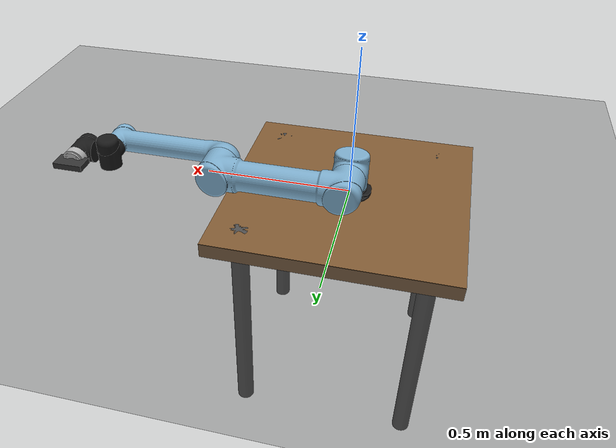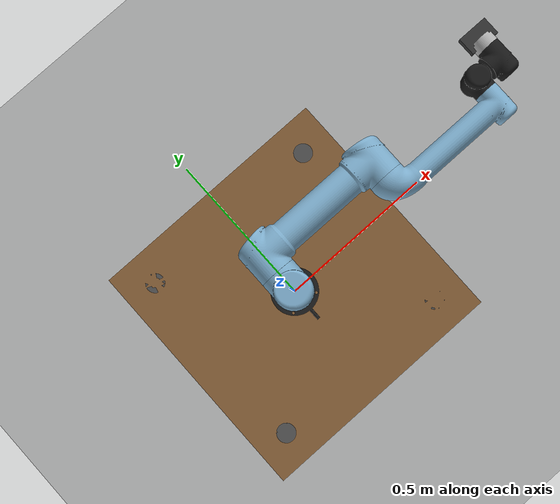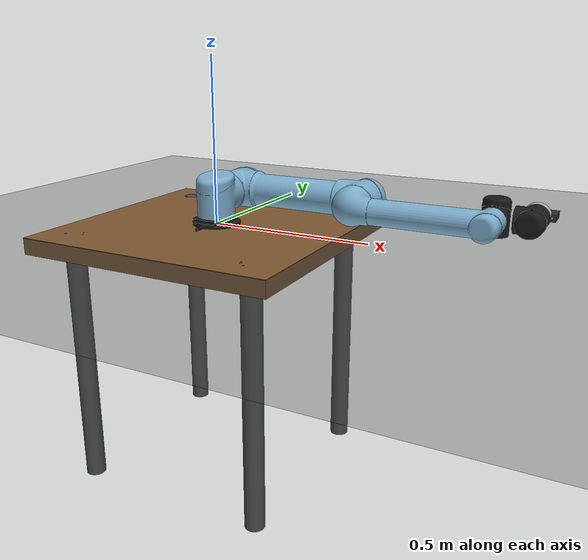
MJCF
<mujoco model="UR5">
  <compiler angle="radian" meshdir="meshes/visual" autolimits="true"/>

  <option timestep="0.002" integrator="RK4">
    <flag contact="enable"/>
  </option>

  <visual>
    <headlight ambient="0.6 0.6 0.6" diffuse="0.8 0.8 0.8" specular="0.2 0.2 0.2"/>
    <rgba haze="0.15 0.25 0.35 1"/>
    <global azimuth="150" elevation="-20"/>
    <quality shadowsize="4096"/>
    <map znear="0.001" zfar="50"/>
  </visual>

  <asset>
    <!-- UR5 Meshes -->
    <mesh name="base" file="base.stl"/>
    <mesh name="shoulder" file="shoulder.stl"/>
    <mesh name="upperarm" file="upperarm.stl"/>
    <mesh name="forearm" file="forearm.stl"/>
    <mesh name="wrist1" file="wrist1.stl"/>
    <mesh name="wrist2" file="wrist2.stl"/>
    <mesh name="wrist3" file="wrist3.stl"/>

    <!-- Materials for realistic appearance -->
    <material name="ur_blue" rgba="0.49 0.678 0.8 1"/>
    <material name="ur_black" rgba="0.1 0.1 0.1 1"/>
    <material name="metal" rgba="0.7 0.7 0.7 1" specular="0.5" shininess="0.3"/>

    <!-- Textures -->
    <texture name="grid" type="2d" builtin="checker" width="512" height="512"
             rgb1="0.2 0.2 0.2" rgb2="0.3 0.3 0.3"/>
    <material name="grid" texture="grid" texrepeat="10 10" reflectance="0.1"/>
  </asset>

  <worldbody>
    <!-- Lighting for realistic rendering -->
    <light pos="2 2 3" dir="-1 -1 -1.5" diffuse="0.8 0.8 0.8" specular="0.3 0.3 0.3" directional="true" castshadow="true"/>
    <light pos="-2 -2 3" dir="1 1 -1.5" diffuse="0.5 0.5 0.5" specular="0.2 0.2 0.2" directional="true"/>

    <!-- Ground plane -->
    <geom name="floor" type="plane" size="3 3 0.1" material="grid" condim="3" friction="1 0.005 0.0001"/>

    <!-- Work table -->
    <body name="table" pos="0 0 0">
      <geom type="box" size="0.4 0.4 0.025" pos="0 0 -0.025" rgba="0.5 0.35 0.2 1"/>
      <geom type="cylinder" size="0.03 0.4" pos="0.3 0.3 -0.4" rgba="0.3 0.3 0.3 1"/>
      <geom type="cylinder" size="0.03 0.4" pos="-0.3 0.3 -0.4" rgba="0.3 0.3 0.3 1"/>
      <geom type="cylinder" size="0.03 0.4" pos="0.3 -0.3 -0.4" rgba="0.3 0.3 0.3 1"/>
      <geom type="cylinder" size="0.03 0.4" pos="-0.3 -0.3 -0.4" rgba="0.3 0.3 0.3 1"/>
    </body>

    <!-- UR5 Robot -->
    <body name="base_link" pos="0 0 0">
      <inertial pos="0 0 0" mass="4.0" diaginertia="0.00443333156 0.00443333156 0.0072"/>
      <geom type="mesh" mesh="base" material="ur_black" contype="0" conaffinity="0"/>

      <!-- Shoulder Pan Joint -->
      <body name="shoulder_link" pos="0 0 0.089159">
        <inertial pos="0 0 0" mass="3.7" diaginertia="0.010267495893 0.010267495893 0.00666"/>
        <joint name="shoulder_pan_joint" type="hinge" axis="0 0 1" range="-6.2831853 6.2831853"
               damping="0.5" armature="0.1"/>
        <geom type="mesh" mesh="shoulder" material="ur_blue" contype="0" conaffinity="0"/>

        <!-- Shoulder Lift Joint -->
        <body name="upper_arm_link" pos="0 0.13585 0" quat="0.707107 0 0.707107 0">
          <inertial pos="0 0 0.28" mass="8.393" diaginertia="0.22689067591 0.22689067591 0.0151074"/>
          <joint name="shoulder_lift_joint" type="hinge" axis="0 0 1" range="-6.2831853 6.2831853"
                 damping="0.5" armature="0.1"/>
          <geom type="mesh" mesh="upperarm" material="ur_blue" contype="0" conaffinity="0"/>

          <!-- Elbow Joint -->
          <body name="forearm_link" pos="0 -0.1197 0.425">
            <inertial pos="0 0 0.25" mass="2.275" diaginertia="0.049443313556 0.049443313556 0.004095"/>
            <joint name="elbow_joint" type="hinge" axis="0 0 1" range="-3.14159265 3.14159265"
                   damping="0.5" armature="0.1"/>
            <geom type="mesh" mesh="forearm" material="ur_blue" contype="0" conaffinity="0"/>

            <!-- Wrist 1 Joint -->
            <body name="wrist_1_link" pos="0 0 0.39225" quat="0.707107 0 0.707107 0">
              <inertial pos="0 0 0" mass="1.219" diaginertia="0.0025598989760 0.0025598989760 0.0021942"/>
              <joint name="wrist_1_joint" type="hinge" axis="0 0 1" range="-6.2831853 6.2831853"
                     damping="0.1" armature="0.05"/>
              <geom type="mesh" mesh="wrist1" material="ur_black" contype="0" conaffinity="0"/>

              <!-- Wrist 2 Joint -->
              <body name="wrist_2_link" pos="0 0.09465 0" quat="0.707107 0 -0.707107 0">
                <inertial pos="0 0 0" mass="1.219" diaginertia="0.0025598989760 0.0025598989760 0.0021942"/>
                <joint name="wrist_2_joint" type="hinge" axis="0 0 1" range="-6.2831853 6.2831853"
                       damping="0.1" armature="0.05"/>
                <geom type="mesh" mesh="wrist2" material="ur_black" contype="0" conaffinity="0"/>

                <!-- Wrist 3 Joint -->
                <body name="wrist_3_link" pos="0 0 0.09465">
                  <inertial pos="0 0 0" mass="0.1879" diaginertia="0.000132134 0.000132134 0.000132134"/>
                  <joint name="wrist_3_joint" type="hinge" axis="0 0 1" range="-6.2831853 6.2831853"
                         damping="0.1" armature="0.05"/>
                  <geom type="mesh" mesh="wrist3" material="metal" contype="0" conaffinity="0"/>

                  <!-- End Effector Site -->
                  <site name="ee_site" pos="0 0.0823 0" size="0.01" rgba="1 0 0 1"/>

                  <!-- Gripper visualization (simple) -->
                  <geom type="box" size="0.01 0.03 0.05" pos="0 0.09 0" rgba="0.2 0.2 0.2 1"
                        contype="0" conaffinity="0"/>
                </body>
              </body>
            </body>
          </body>
        </body>
      </body>
    </body>
  </worldbody>

  <actuator>
    <motor name="shoulder_pan" joint="shoulder_pan_joint" ctrllimited="true" ctrlrange="-150 150" gear="101"/>
    <motor name="shoulder_lift" joint="shoulder_lift_joint" ctrllimited="true" ctrlrange="-150 150" gear="101"/>
    <motor name="elbow" joint="elbow_joint" ctrllimited="true" ctrlrange="-150 150" gear="101"/>
    <motor name="wrist_1" joint="wrist_1_joint" ctrllimited="true" ctrlrange="-28 28" gear="101"/>
    <motor name="wrist_2" joint="wrist_2_joint" ctrllimited="true" ctrlrange="-28 28" gear="101"/>
    <motor name="wrist_3" joint="wrist_3_joint" ctrllimited="true" ctrlrange="-28 28" gear="101"/>
  </actuator>

  <sensor>
    <jointpos name="shoulder_pan_pos" joint="shoulder_pan_joint"/>
    <jointpos name="shoulder_lift_pos" joint="shoulder_lift_joint"/>
    <jointpos name="elbow_pos" joint="elbow_joint"/>
    <jointpos name="wrist_1_pos" joint="wrist_1_joint"/>
    <jointpos name="wrist_2_pos" joint="wrist_2_joint"/>
    <jointpos name="wrist_3_pos" joint="wrist_3_joint"/>
  </sensor>
</mujoco>
